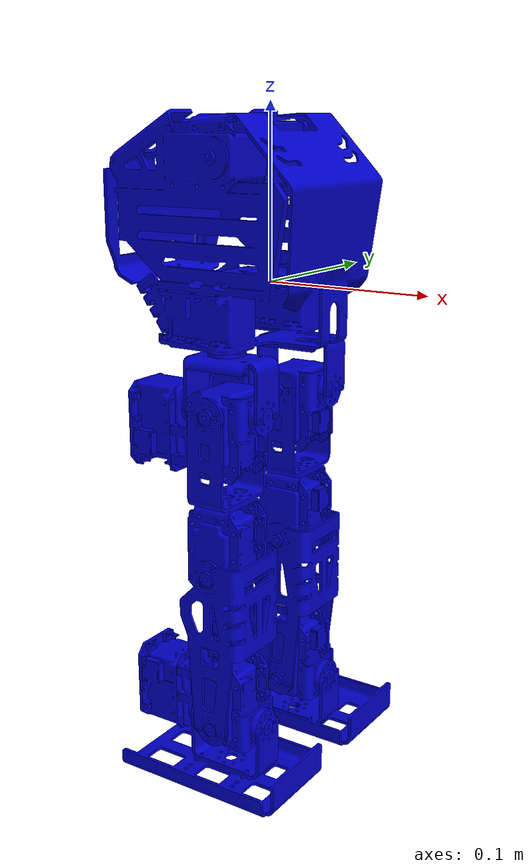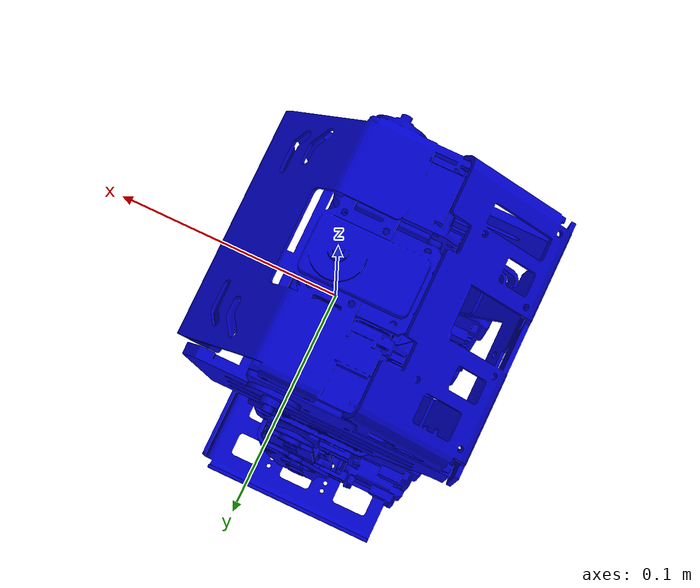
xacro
<?xml version="1.0"?>
<robot name="uthai_humanoid"
    xmlns:xacro="http://www.ros.org/wiki/xacro">
    <!--Uthai Humanoid, FIBO, KMUTT, Thailand, 2017-->
    <!--This file generated by Liews Wuttipat-->
    <!--Inertia perameters -->
    <xacro:property name="pi" value="3.14159265"/>
    <xacro:property name="base_mass" value="4.0"/>
    <xacro:property name="link1_mass" value="4.0"/>
    <xacro:property name="link1_cog" value="0.0 0.0 0.0"/>
    <xacro:include filename="$(find uthai_description)/urdf/uthai_materials.xacro" />
    <xacro:include filename="$(find uthai_description)/urdf/uthai_macros.xacro" />
    <link name="base_link"/>
    <link name="body">
        <visualize fname="body.STL"/>
    </link>
    <joint name="base_link_to_body" type="fixed">
        <parent link="base_link"/>
        <child link="body"/>
    </joint>
    <link name="r_hip_yaw">
        <visualize fname="r_hip_yaw.STL"/>
    </link>
    <link name="r_hip_pitch">
        <visualize fname="r_hip_pitch.STL"/>
    </link>
    <link name="r_hip_roll">
        <visualize fname="r_hip_roll.STL"/>
    </link>
    <link name="r_knee_pitch">
        <visualize fname="r_knee_pitch.STL"/>
    </link>
    <link name="r_ankle_pitch">
        <visualize fname="r_ankle_pitch.STL"/>
    </link>
    <link name="r_ankle_roll">
        <visualize fname="r_ankle_roll.STL"/>
    </link>
    <link name="r_foot"/>
    <link name="r_foot_ref"/>
    <joint name="r_j_hip_yaw" type="revolute">
        <origin rpy="0 0 ${-pi/2}" xyz="-0.005 -0.0375 -0.0375"/>
        <parent link="body"/>
        <child link="r_hip_yaw"/>
        <axis xyz="0 0 1"/>
        <limit effort="10" lower="-2.6179939" upper="2.6179939" velocity="5.6548668"/>
    </joint>
    <joint name="r_j_hip_roll" type="revolute">
        <origin rpy="${pi/2} 0 ${pi}" xyz="0 0 -0.0315"/>
        <parent link="r_hip_yaw"/>
        <child link="r_hip_roll"/>
        <axis xyz="0 0 1"/>
        <limit effort="10" lower="-2.6179939" upper="2.6179939" velocity="5.6548668"/>
    </joint>
    <joint name="r_j_hip_pitch" type="revolute">
        <origin rpy="${-pi/2} 0 ${-pi/2}" xyz="0 0 0"/>
        <parent link="r_hip_roll"/>
        <child link="r_hip_pitch"/>
        <axis xyz="0 0 1"/>
        <limit effort="10" lower="-2.6179939" upper="2.6179939" velocity="5.6548668"/>
    </joint>
    <joint name="r_j_knee_pitch" type="revolute">
        <origin rpy="0 0 0" xyz="0.0975 0 0"/>
        <parent link="r_hip_pitch"/>
        <child link="r_knee_pitch"/>
        <axis xyz="0 0 1"/>
        <limit effort="10" lower="-2.6179939" upper="2.6179939" velocity="5.6548668"/>
    </joint>
    <joint name="r_j_ankle_pitch" type="revolute">
        <origin rpy="0 0 0" xyz="0.098 0 0"/>
        <parent link="r_knee_pitch"/>
        <child link="r_ankle_pitch"/>
        <axis xyz="0 0 1"/>
        <limit effort="10" lower="-2.6179939" upper="2.6179939" velocity="5.6548668"/>
    </joint>
    <joint name="r_j_ankle_roll" type="revolute">
        <origin rpy="${pi/2} 0 0" xyz="0 0 0"/>
        <parent link="r_ankle_pitch"/>
        <child link="r_ankle_roll"/>
        <axis xyz="0 0 1"/>
        <limit effort="10" lower="-2.6179939" upper="2.6179939" velocity="5.6548668"/>
    </joint>
    <joint name="r_j_foot" type="fixed">
        <origin rpy="${-pi/2} 0 0" xyz="0.0335 0 0"/>
        <parent link="r_ankle_roll"/>
        <child link="r_foot"/>
    </joint>
    <joint name="r_j_foot_ref" type="fixed">
        <origin rpy="${pi/2} 0 ${-pi/2}" xyz="0 0 0"/>
        <parent link="r_foot"/>
        <child link="r_foot_ref"/>
    </joint>
    <link name="l_hip_yaw">
        <visualize fname="l_hip_yaw.STL"/>
    </link>
    <link name="l_hip_pitch">
        <visualize fname="l_hip_pitch.STL"/>
    </link>
    <link name="l_hip_roll">
        <visualize fname="l_hip_roll.STL"/>
    </link>
    <link name="l_knee_pitch">
        <visualize fname="l_knee_pitch.STL"/>
    </link>
    <link name="l_ankle_pitch">
        <visualize fname="l_ankle_pitch.STL"/>
    </link>
    <link name="l_ankle_roll">
        <visualize fname="l_ankle_roll.STL"/>
    </link>
    <link name="l_foot"/>
    <link name="l_foot_ref"/>
    <joint name="l_j_hip_yaw" type="revolute">
        <origin rpy="0 0 ${pi/2}" xyz="-0.005 0.037 -0.037"/>
        <parent link="body"/>
        <child link="l_hip_yaw"/>
        <axis xyz="0 0 1"/>
        <limit effort="10" lower="-2.6179939" upper="2.6179939" velocity="5.6548668"/>
    </joint>
    <joint name="l_j_hip_roll" type="revolute">
        <origin rpy="${pi/2} 0 0" xyz="0 0 -0.0315"/>
        <parent link="l_hip_yaw"/>
        <child link="l_hip_roll"/>
        <axis xyz="0 0 1"/>
        <limit effort="10" lower="-2.6179939" upper="2.6179939" velocity="5.6548668"/>
    </joint>
    <joint name="l_j_hip_pitch" type="revolute">
        <origin rpy="${-pi/2} 0 ${-pi/2}" xyz="0 0 0"/>
        <parent link="l_hip_roll"/>
        <child link="l_hip_pitch"/>
        <axis xyz="0 0 1"/>
        <limit effort="10" lower="-2.6179939" upper="2.6179939" velocity="5.6548668"/>
    </joint>
    <joint name="l_j_knee_pitch" type="revolute">
        <origin rpy="0 0 0" xyz="0.0975 0 0"/>
        <parent link="l_hip_pitch"/>
        <child link="l_knee_pitch"/>
        <axis xyz="0 0 1"/>
        <limit effort="10" lower="-2.6179939" upper="2.6179939" velocity="5.6548668"/>
    </joint>
    <joint name="l_j_ankle_pitch" type="revolute">
        <origin rpy="0 0 0" xyz="0.098 0 0"/>
        <parent link="l_knee_pitch"/>
        <child link="l_ankle_pitch"/>
        <axis xyz="0 0 1"/>
        <limit effort="10" lower="-2.6179939" upper="2.6179939" velocity="5.6548668"/>
    </joint>
    <joint name="l_j_ankle_roll" type="revolute">
        <origin rpy="${pi/2} 0 0" xyz="0 0 0"/>
        <parent link="l_ankle_pitch"/>
        <child link="l_ankle_roll"/>
        <axis xyz="0 0 1"/>
        <limit effort="10" lower="-2.6179939" upper="2.6179939" velocity="5.6548668"/>
    </joint>
    <joint name="l_j_foot" type="fixed">
        <origin rpy="${-pi/2} 0 0" xyz="0.0335 0 0"/>
        <parent link="l_ankle_roll"/>
        <child link="l_foot"/>
    </joint>
    <joint name="l_j_foot_ref" type="fixed">
        <origin rpy="${pi/2} 0 ${-pi/2}" xyz="0 0 0"/>
        <parent link="l_foot"/>
        <child link="l_foot_ref"/>
    </joint>
    <transmis jname="r_j_hip_yaw" />
    <transmis jname="r_j_hip_roll" />
    <transmis jname="r_j_hip_pitch" />
    <transmis jname="r_j_knee_pitch" />
    <transmis jname="r_j_ankle_pitch" />
    <transmis jname="r_j_ankle_roll" />
    <transmis jname="l_j_hip_yaw" />
    <transmis jname="l_j_hip_roll" />
    <transmis jname="l_j_hip_pitch" />
    <transmis jname="l_j_knee_pitch" />
    <transmis jname="l_j_ankle_pitch" />
    <transmis jname="l_j_ankle_roll" />
</robot>

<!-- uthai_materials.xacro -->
<robot>
    <material name="black">
        <color rgba="0.0 0.0 0.0 1.0"/>
    </material>
    <material name="blue">
        <color rgba="0.0 0.0 0.8 1.0"/>
    </material>
    <material name="green">
        <color rgba="0.0 0.8 0.0 1.0"/>
    </material>
    <material name="grey">
        <color rgba="0.2 0.2 0.2 1.0"/>
    </material>
    <material name="orange">
        <color rgba="${255/255} ${108/255} ${10/255} 1.0"/>
    </material>
    <material name="brown">
        <color rgba="${222/255} ${207/255} ${195/255} 1.0"/>
    </material>
    <material name="red">
        <color rgba="0.8 0.0 0.0 1.0"/>
    </material>
    <material name="white">
        <color rgba="1.0 1.0 1.0 1.0"/>
    </material>
</robot>

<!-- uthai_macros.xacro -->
<robot>
    <macro name="visualize" params="fname">
        <visual>
            <origin xyz="0 0 0" rpy="0 0 0"/>
            <geometry>
                <mesh filename="package://uthai_description/meshes/${fname}" scale="1 1 1"/>
            </geometry>
            <material name="blue"/>
        </visual>
        <collision>
            <geometry>
                <mesh filename="package://uthai_description/meshes/${fname}" scale="1 1 1"/>
            </geometry>
        </collision>
    </macro>
    <macro name="transmis" params="jname">
        <transmission name="t_${jname}">
            <type>transmission_interface/SimpleTransmission</type>
            <joint name="${jname}">
                <hardwareInterface>hardware_interface/EffortJointInterface</hardwareInterface>
            </joint>
            <actuator name="m_${jname}">
                <hardwareInterface>EffortJointInterface</hardwareInterface>
                <mechanicalReduction>1</mechanicalReduction>
            </actuator>
        </transmission>
    </macro>
    <macro name="uthai_leg" params="pf reflect">
        <link name="${pf}_hip_yaw">
            <visualize fname="${pf}_hip_yaw.STL"/>
        </link>
        <link name="${pf}_hip_pitch">
            <visualize fname="${pf}_hip_pitch.STL"/>
        </link>
        <link name="${pf}_hip_roll">
            <visualize fname="${pf}_hip_roll.STL"/>
        </link>
        <link name="${pf}_knee_pitch">
            <visualize fname="${pf}_knee_pitch.STL"/>
        </link>
        <link name="${pf}_ankle_pitch">
            <visualize fname="${pf}_ankle_pitch.STL"/>
        </link>
        <link name="${pf}_ankle_roll">
            <visualize fname="${pf}_ankle_roll.STL"/>
        </link>
        <link name="${pf}_foot"/>
        <link name="${pf}_foot_ref"/>
        <joint name="${pf}_j_hip_yaw" type="revolute">
            <origin rpy="0 0 ${-pi/2}" xyz="0 -0.09 -0.055"/>
            <parent link="body"/>
            <child link="${pf}_hip_yaw"/>
            <axis xyz="0 0 1"/>
            <limit effort="10" lower="-2.6179939" upper="2.6179939" velocity="5.6548668"/>
        </joint>
        <joint name="${pf}_j_hip_roll" type="revolute">
            <origin rpy="${-pi/2} 0 ${pi/2}" xyz="0 0 -0.04"/>
            <parent link="${pf}_hip_yaw"/>
            <child link="${pf}_hip_roll"/>
            <axis xyz="0 0 1"/>
            <limit effort="10" lower="-2.6179939" upper="2.6179939" velocity="5.6548668"/>
        </joint>
        <joint name="${pf}_j_hip_pitch" type="revolute">
            <origin rpy="${pi/2} 0 ${pi/2}" xyz="0 0 0"/>
            <parent link="${pf}_hip_roll"/>
            <child link="${pf}_hip_pitch"/>
            <axis xyz="0 0 1"/>
            <limit effort="10" lower="-2.6179939" upper="2.6179939" velocity="5.6548668"/>
        </joint>
        <joint name="${pf}_j_knee_pitch" type="revolute">
            <origin rpy="${-pi/2} 0 0" xyz="0.3 0 0"/>
            <parent link="${pf}_hip_roll"/>
            <child link="${pf}_knee_pitch"/>
            <axis xyz="0 0 1"/>
            <limit effort="10" lower="-2.6179939" upper="2.6179939" velocity="5.6548668"/>
        </joint>
        <joint name="${pf}_j_ankle_pitch" type="revolute">
            <origin rpy="0 0 0" xyz="0.315 0 0"/>
            <parent link="${pf}_knee_pitch"/>
            <child link="${pf}_ankle_pitch"/>
            <axis xyz="0 0 1"/>
            <limit effort="10" lower="-2.6179939" upper="2.6179939" velocity="5.6548668"/>
        </joint>
        <joint name="${pf}_j_ankle_roll" type="revolute">
            <origin rpy="${pi/2} 0 0" xyz="0 0 0"/>
            <parent link="${pf}_ankle_pitch"/>
            <child link="${pf}_ankle_roll"/>
            <axis xyz="0 0 1"/>
            <limit effort="10" lower="-2.6179939" upper="2.6179939" velocity="5.6548668"/>
        </joint>
        <joint name="${pf}_j_foot" type="fixed">
            <origin rpy="${-pi/2} 0 0" xyz="0.045 0 0"/>
            <parent link="${pf}_ankle_roll"/>
            <child link="${pf}_foot"/>
        </joint>
        <joint name="${pf}_j_foot_ref" type="fixed">
            <origin rpy="${pi/2} 0 ${-pi/2}" xyz="0 -0.058 0.0"/>
            <parent link="${pf}_foot"/>
            <child link="${pf}_foot_ref"/>
        </joint>
        <transmis jname="${pf}_j_hip_yaw" />
        <transmis jname="${pf}_j_hip_pitch" />
        <transmis jname="${pf}_j_hip_roll" />
        <transmis jname="${pf}_j_knee_pitch" />
        <transmis jname="${pf}_j_ankle_pitch" />
        <transmis jname="${pf}_j_ankle_roll" />
    </macro>
</robot>
